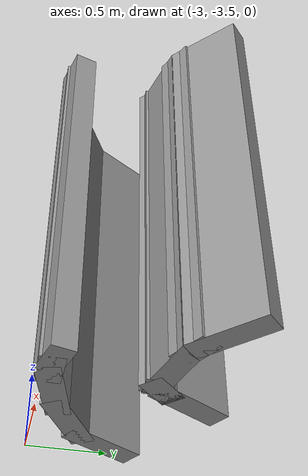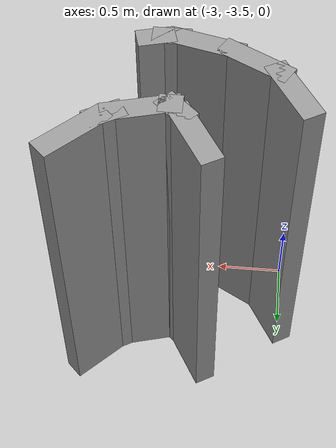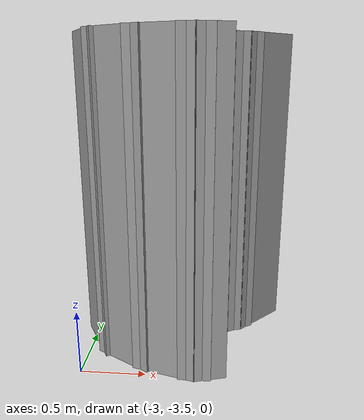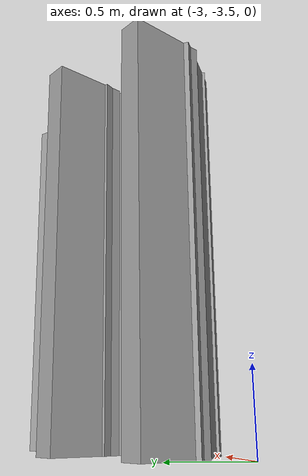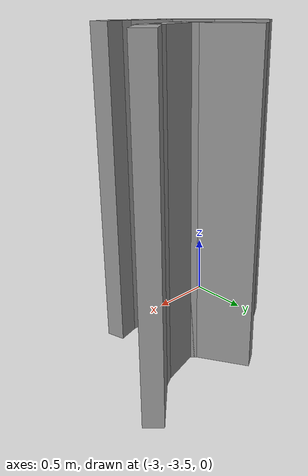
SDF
<?xml version='1.0'?>
<sdf version='1.7'>
  <model name='Untitled'>
    <pose>-1.54976 -1.77811 0 0 -0 0</pose>
    <link name='Wall_0'>
      <collision name='Wall_0_Collision'>
        <geometry>
          <box>
            <size>0.5 0.15 2.5</size>
          </box>
        </geometry>
        <pose>0 0 1.25 0 -0 0</pose>
      </collision>
      <visual name='Wall_0_Visual'>
        <pose>0 0 1.25 0 -0 0</pose>
        <geometry>
          <box>
            <size>0.5 0.15 2.5</size>
          </box>
        </geometry>
        <material>
          <script>
            <uri>file://media/materials/scripts/gazebo.material</uri>
            <name>Gazebo/Grey</name>
          </script>
          <ambient>1 1 1 1</ambient>
        </material>
        <meta>
          <layer>0</layer>
        </meta>
      </visual>
      <pose>-1.12076 -1.50817 0 0 -0 2.61799</pose>
    </link>
    <link name='Wall_1'>
      <collision name='Wall_1_Collision'>
        <geometry>
          <box>
            <size>0.5 0.15 2.5</size>
          </box>
        </geometry>
        <pose>0 0 1.25 0 -0 0</pose>
      </collision>
      <visual name='Wall_1_Visual'>
        <pose>0 0 1.25 0 -0 0</pose>
        <geometry>
          <box>
            <size>0.5 0.15 2.5</size>
          </box>
        </geometry>
        <material>
          <script>
            <uri>file://media/materials/scripts/gazebo.material</uri>
            <name>Gazebo/Grey</name>
          </script>
          <ambient>1 1 1 1</ambient>
        </material>
        <meta>
          <layer>0</layer>
        </meta>
      </visual>
      <pose>-1.35981 -1.26912 0 0 -0 2.0944</pose>
    </link>
    <link name='Wall_14'>
      <collision name='Wall_14_Collision'>
        <geometry>
          <box>
            <size>0.15 0.15 2.5</size>
          </box>
        </geometry>
        <pose>0 0 1.25 0 -0 0</pose>
      </collision>
      <visual name='Wall_14_Visual'>
        <pose>0 0 1.25 0 -0 0</pose>
        <geometry>
          <box>
            <size>0.15 0.15 2.5</size>
          </box>
        </geometry>
        <material>
          <script>
            <uri>file://media/materials/scripts/gazebo.material</uri>
            <name>Gazebo/Grey</name>
          </script>
          <ambient>1 1 1 1</ambient>
        </material>
        <meta>
          <layer>0</layer>
        </meta>
      </visual>
      <pose>-0.631128 -1.08626 0 0 -0 0</pose>
    </link>
    <link name='Wall_15'>
      <collision name='Wall_15_Collision'>
        <geometry>
          <box>
            <size>0.5 0.15 2.5</size>
          </box>
        </geometry>
        <pose>0 0 1.25 0 -0 0</pose>
      </collision>
      <visual name='Wall_15_Visual'>
        <pose>0 0 1.25 0 -0 0</pose>
        <geometry>
          <box>
            <size>0.5 0.15 2.5</size>
          </box>
        </geometry>
        <material>
          <script>
            <uri>file://media/materials/scripts/gazebo.material</uri>
            <name>Gazebo/Grey</name>
          </script>
          <ambient>1 1 1 1</ambient>
        </material>
        <meta>
          <layer>0</layer>
        </meta>
      </visual>
      <pose>-0.462091 -1.04096 0 0 -0 0.261799</pose>
    </link>
    <link name='Wall_16'>
      <collision name='Wall_16_Collision'>
        <geometry>
          <box>
            <size>0.25 0.15 2.5</size>
          </box>
        </geometry>
        <pose>0 0 1.25 0 -0 0</pose>
      </collision>
      <visual name='Wall_16_Visual'>
        <pose>0 0 1.25 0 -0 0</pose>
        <geometry>
          <box>
            <size>0.25 0.15 2.5</size>
          </box>
        </geometry>
        <material>
          <script>
            <uri>file://media/materials/scripts/gazebo.material</uri>
            <name>Gazebo/Grey</name>
          </script>
          <ambient>1 1 1 1</ambient>
        </material>
        <meta>
          <layer>0</layer>
        </meta>
      </visual>
      <pose>-0.249753 -0.970671 0 0 -0 0.523599</pose>
    </link>
    <link name='Wall_17'>
      <collision name='Wall_17_Collision'>
        <geometry>
          <box>
            <size>0.5 0.15 2.5</size>
          </box>
        </geometry>
        <pose>0 0 1.25 0 -0 0</pose>
      </collision>
      <visual name='Wall_17_Visual'>
        <pose>0 0 1.25 0 -0 0</pose>
        <geometry>
          <box>
            <size>0.5 0.15 2.5</size>
          </box>
        </geometry>
        <material>
          <script>
            <uri>file://media/materials/scripts/gazebo.material</uri>
            <name>Gazebo/Grey</name>
          </script>
          <ambient>1 1 1 1</ambient>
        </material>
        <meta>
          <layer>0</layer>
        </meta>
      </visual>
      <pose>-0.082708 -0.821927 0 0 -0 0.785398</pose>
    </link>
    <link name='Wall_19'>
      <collision name='Wall_19_Collision'>
        <geometry>
          <box>
            <size>0.25 0.15 2.5</size>
          </box>
        </geometry>
        <pose>0 0 1.25 0 -0 0</pose>
      </collision>
      <visual name='Wall_19_Visual'>
        <pose>0 0 1.25 0 -0 0</pose>
        <geometry>
          <box>
            <size>0.25 0.15 2.5</size>
          </box>
        </geometry>
        <material>
          <script>
            <uri>file://media/materials/scripts/gazebo.material</uri>
            <name>Gazebo/Grey</name>
          </script>
          <ambient>1 1 1 1</ambient>
        </material>
        <meta>
          <layer>0</layer>
        </meta>
      </visual>
      <pose>-0.666484 -1.0509 0 0 -0 2.35619</pose>
    </link>
    <link name='Wall_20'>
      <collision name='Wall_20_Collision'>
        <geometry>
          <box>
            <size>0.25 0.15 2.5</size>
          </box>
        </geometry>
        <pose>0 0 1.25 0 -0 0</pose>
      </collision>
      <visual name='Wall_20_Visual'>
        <pose>0 0 1.25 0 -0 0</pose>
        <geometry>
          <box>
            <size>0.25 0.15 2.5</size>
          </box>
        </geometry>
        <material>
          <script>
            <uri>file://media/materials/scripts/gazebo.material</uri>
            <name>Gazebo/Grey</name>
          </script>
          <ambient>1 1 1 1</ambient>
        </material>
        <meta>
          <layer>0</layer>
        </meta>
      </visual>
      <pose>-0.666484 -1.0509 0 0 -0 -0.785398</pose>
    </link>
    <link name='Wall_21'>
      <collision name='Wall_21_Collision'>
        <geometry>
          <box>
            <size>0.25 0.15 2.5</size>
          </box>
        </geometry>
        <pose>0 0 1.25 0 -0 0</pose>
      </collision>
      <visual name='Wall_21_Visual'>
        <pose>0 0 1.25 0 -0 0</pose>
        <geometry>
          <box>
            <size>0.25 0.15 2.5</size>
          </box>
        </geometry>
        <material>
          <script>
            <uri>file://media/materials/scripts/gazebo.material</uri>
            <name>Gazebo/Grey</name>
          </script>
          <ambient>0 0 0 1</ambient>
        </material>
        <meta>
          <layer>0</layer>
        </meta>
      </visual>
      <pose>-0.666484 -1.0509 0 0 -0 2.35619</pose>
    </link>
    <link name='Wall_22'>
      <collision name='Wall_22_Collision'>
        <geometry>
          <box>
            <size>0.25 0.15 2.5</size>
          </box>
        </geometry>
        <pose>0 0 1.25 0 -0 0</pose>
      </collision>
      <visual name='Wall_22_Visual'>
        <pose>0 0 1.25 0 -0 0</pose>
        <geometry>
          <box>
            <size>0.25 0.15 2.5</size>
          </box>
        </geometry>
        <material>
          <script>
            <uri>file://media/materials/scripts/gazebo.material</uri>
            <name>Gazebo/Grey</name>
          </script>
          <ambient>1 1 1 1</ambient>
        </material>
        <meta>
          <layer>0</layer>
        </meta>
      </visual>
      <pose>-0.666484 -1.0509 0 0 -0 2.35619</pose>
    </link>
    <link name='Wall_23'>
      <collision name='Wall_23_Collision'>
        <geometry>
          <box>
            <size>0.5 0.15 2.5</size>
          </box>
        </geometry>
        <pose>0 0 1.25 0 -0 0</pose>
      </collision>
      <visual name='Wall_23_Visual'>
        <pose>0 0 1.25 0 -0 0</pose>
        <geometry>
          <box>
            <size>0.5 0.15 2.5</size>
          </box>
        </geometry>
        <material>
          <script>
            <uri>file://media/materials/scripts/gazebo.material</uri>
            <name>Gazebo/Grey</name>
          </script>
          <ambient>1 1 1 1</ambient>
        </material>
        <meta>
          <layer>0</layer>
        </meta>
      </visual>
      <pose>-0.789339 -0.863993 0 0 -0 2.0944</pose>
    </link>
    <link name='Wall_3'>
      <collision name='Wall_3_Collision'>
        <geometry>
          <box>
            <size>0.5 0.15 2.5</size>
          </box>
        </geometry>
        <pose>0 0 1.25 0 -0 0</pose>
      </collision>
      <visual name='Wall_3_Visual'>
        <pose>0 0 1.25 0 -0 0</pose>
        <geometry>
          <box>
            <size>0.5 0.15 2.5</size>
          </box>
        </geometry>
        <material>
          <script>
            <uri>file://media/materials/scripts/gazebo.material</uri>
            <name>Gazebo/Grey</name>
          </script>
          <ambient>1 1 1 1</ambient>
        </material>
        <meta>
          <layer>0</layer>
        </meta>
      </visual>
      <pose>-0.800165 -1.64096 0 0 -0 -0.261799</pose>
    </link>
    <link name='Wall_4'>
      <collision name='Wall_4_Collision'>
        <geometry>
          <box>
            <size>0.25 0.15 2.5</size>
          </box>
        </geometry>
        <pose>0 0 1.25 0 -0 0</pose>
      </collision>
      <visual name='Wall_4_Visual'>
        <pose>0 0 1.25 0 -0 0</pose>
        <geometry>
          <box>
            <size>0.25 0.15 2.5</size>
          </box>
        </geometry>
        <material>
          <script>
            <uri>file://media/materials/scripts/gazebo.material</uri>
            <name>Gazebo/Grey</name>
          </script>
          <ambient>1 1 1 1</ambient>
        </material>
        <meta>
          <layer>0</layer>
        </meta>
      </visual>
      <pose>-0.581128 -1.68626 0 0 -0 0</pose>
    </link>
    <link name='Wall_5'>
      <collision name='Wall_5_Collision'>
        <geometry>
          <box>
            <size>0.25 0.15 2.5</size>
          </box>
        </geometry>
        <pose>0 0 1.25 0 -0 0</pose>
      </collision>
      <visual name='Wall_5_Visual'>
        <pose>0 0 1.25 0 -0 0</pose>
        <geometry>
          <box>
            <size>0.25 0.15 2.5</size>
          </box>
        </geometry>
        <material>
          <script>
            <uri>file://media/materials/scripts/gazebo.material</uri>
            <name>Gazebo/Grey</name>
          </script>
          <ambient>1 1 1 1</ambient>
        </material>
        <meta>
          <layer>0</layer>
        </meta>
      </visual>
      <pose>-0.482832 -1.67332 0 0 -0 0.261799</pose>
    </link>
    <static>1</static>
  </model>
</sdf>
